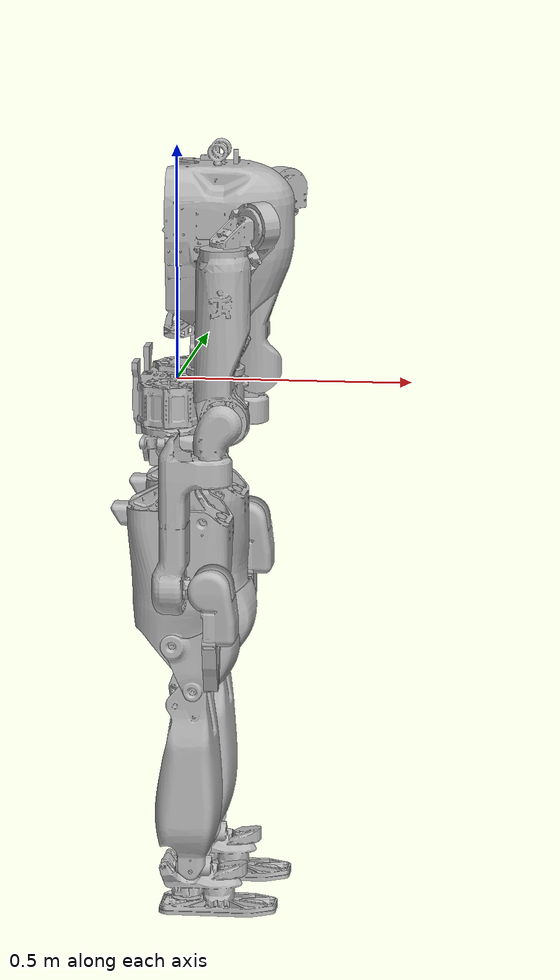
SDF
<sdf version='1.4'>
  <model name='nadia'>
    <link name='PELVIS_LINK'>
      <pose>0 0 0 0 -0 0</pose>
      <inertial>
        <pose>0.0207309 2.023e-05 -0.0309812 0 -0 0</pose>
        <mass>19.0917</mass>
        <inertia>
          <ixx>0.0942</ixx>
          <ixy>6.05e-06</ixy>
          <ixz>0.000379</ixz>
          <iyy>0.0416</iyy>
          <iyz>3.37e-07</iyz>
          <izz>0.112</izz>
        </inertia>
      </inertial>
	  <sensor name="pelvis_orientus_imu" type="imu">
      <pose>-0.00960080 -0.0000010 -0.07599977 0 0 3.141592</pose>
      <always_on>1</always_on>
        <imu>
          <noise>
            <type>gaussian</type>
            <rate>
              <mean>0</mean>
              <stddev>0.0002</stddev>
              <bias_mean>7.5e-06</bias_mean>
              <bias_stddev>8e-07</bias_stddev>
            </rate>
            <accel>
              <mean>0</mean>
              <stddev>0.017</stddev>
              <bias_mean>0.1</bias_mean>
              <bias_stddev>0.001</bias_stddev>
            </accel>
          </noise>
        </imu>
      <visualize>1</visualize>
      <topic>imu_sensor</topic>
    </sensor>

    <sensor name="pelvis_gable_imu" type="imu">
      <pose>0.04096090  -0.17557654 -0.00812384 1.5708 3.141592 0.3926991</pose>
      <always_on>1</always_on>
        <imu>
          <noise>
            <type>gaussian</type>
            <rate>
              <mean>0</mean>
              <stddev>0.0002</stddev>
              <bias_mean>7.5e-06</bias_mean>
              <bias_stddev>8e-07</bias_stddev>
            </rate>
            <accel>
              <mean>0</mean>
              <stddev>0.017</stddev>
              <bias_mean>0.1</bias_mean>
              <bias_stddev>0.001</bias_stddev>
            </accel>
          </noise>
        </imu>
      <visualize>1</visualize>
      <topic>imu_sensor</topic>
    </sensor>

      <sensor name="pelvis_stim_imu" type="imu">
      <pose>-0.03133646 0.02237500 -0.07000000 0.0 3.141592 0.0</pose>
      <always_on>1</always_on>
        <imu>
          <noise>
            <type>gaussian</type>
            <rate>
              <mean>0</mean>
              <stddev>0.0002</stddev>
              <bias_mean>7.5e-06</bias_mean>
              <bias_stddev>8e-07</bias_stddev>
            </rate>
            <accel>
              <mean>0</mean>
              <stddev>0.017</stddev>
              <bias_mean>0.1</bias_mean>
              <bias_stddev>0.001</bias_stddev>
            </accel>
          </noise>
        </imu>
      <visualize>1</visualize>
      <topic>imu_sensor</topic>
    </sensor>

      <visual name='PELVIS_LINK_visual'>
        <pose>0 0 0 0 -0 0</pose>
        <geometry>
          <mesh>
            <scale>1 1 1</scale>
            <uri>model://nadia_V16_description/meshes/pelvis.obj</uri>
          </mesh>
        </geometry>
      </visual>
      <velocity_decay>
        <linear>0</linear>
        <angular>0</angular>
      </velocity_decay>
    </link>
    <link name='LEFT_HIP_YAW_LINK'>
      <pose>0 0.115 -0.07185 0 -0 0</pose>
      <inertial>
        <pose>-0.00629727 0.00606893 -0.0397184 0 -0 0</pose>
        <mass>1.814</mass>
        <inertia>
          <ixx>0.00474191</ixx>
          <ixy>0.000527</ixy>
          <ixz>-0.000307</ixz>
          <iyy>0.00414</iyy>
          <iyz>1.36e-05</iyz>
          <izz>0.00569</izz>
        </inertia>
      </inertial>
      <visual name='LEFT_HIP_YAW_LINK_visual'>
        <pose>0 0 0 0 -0 0</pose>
        <geometry>
          <mesh>
            <scale>1 1 1</scale>
            <uri>model://nadia_V16_description/meshes/left_hip_yaw.obj</uri>
          </mesh>
        </geometry>
      </visual>
      <velocity_decay>
        <linear>0</linear>
        <angular>0</angular>
      </velocity_decay>
    </link>
    <joint name='LEFT_HIP_Z' type='revolute'>
      <child>LEFT_HIP_YAW_LINK</child>
      <parent>PELVIS_LINK</parent>
      <axis>
        <xyz>0 0 -1</xyz>
        <limit>
          <lower>-0.7854</lower>
          <upper>0.7854</upper>
          <effort>1000</effort>
          <velocity>100</velocity>
        </limit>
        <dynamics>
          <damping>0.05</damping>
        </dynamics>
      </axis>
    </joint>
    <link name='LEFT_HIP_ROLL_LINK'>
      <pose>0.035 0.13 -0.1216 0 -0 0</pose>
      <inertial>
        <pose>-0.0132704 0.00316985 -0.054 0 -0 0</pose>
        <mass>0.762</mass>
        <inertia>
          <ixx>0.00102899</ixx>
          <ixy>-9.31e-06</ixy>
          <ixz>0.000352</ixz>
          <iyy>0.00138</iyy>
          <iyz>3.22e-05</iyz>
          <izz>0.000663</izz>
        </inertia>
      </inertial>
      <visual name='LEFT_HIP_ROLL_LINK_visual'>
        <pose>0 0 0 0 -0 0</pose>
        <geometry>
          <mesh>
            <scale>1 1 1</scale>
            <uri>model://nadia_V16_description/meshes/left_hip_roll.obj</uri>
          </mesh>
        </geometry>
      </visual>
      <velocity_decay>
        <linear>0</linear>
        <angular>0</angular>
      </velocity_decay>
    </link>
    <joint name='LEFT_HIP_X' type='revolute'>
      <child>LEFT_HIP_ROLL_LINK</child>
      <parent>LEFT_HIP_YAW_LINK</parent>
      <axis>
        <xyz>1 0 0</xyz>
        <limit>
          <lower>-0.5236</lower>
          <upper>1.0472</upper>
          <effort>1000</effort>
          <velocity>100</velocity>
        </limit>
        <dynamics>
          <damping>0.05</damping>
        </dynamics>
      </axis>
    </joint>
    <link name='LEFT_THIGH_LINK'>
      <pose>0.035 0.13 -0.200668 0 -0 0</pose>
      <inertial>
        <pose>-0.00093749 0.0113451 -0.178631 0 -0 0</pose>
        <mass>10.953</mass>
        <inertia>
          <ixx>0.162227</ixx>
          <ixy>-0.000749</ixy>
          <ixz>0.0156</ixz>
          <iyy>0.174</iyy>
          <iyz>0.00213</iyz>
          <izz>0.0528</izz>
        </inertia>
      </inertial>
      <sensor name="left_thigh_imu" type="imu">
      <pose>0.05793744 0.01666131 -0.09511697 2.025  0.000 -1.571</pose>
      <always_on>1</always_on>
        <imu>
          <noise>
            <type>gaussian</type>
            <rate>
              <mean>0</mean>
              <stddev>0.0002</stddev>
              <bias_mean>7.5e-06</bias_mean>
              <bias_stddev>8e-07</bias_stddev>
            </rate>
            <accel>
              <mean>0</mean>
              <stddev>0.017</stddev>
              <bias_mean>0.1</bias_mean>
              <bias_stddev>0.001</bias_stddev>
            </accel>
          </noise>
        </imu>
      <visualize>1</visualize>
    </sensor>
      <visual name='LEFT_THIGH_LINK_visual'>
        <pose>0 0 0 0 -0 0</pose>
        <geometry>
          <mesh>
            <scale>1 1 1</scale>
            <uri>model://nadia_V16_description/meshes/left_thigh.obj</uri>
          </mesh>
        </geometry>
      </visual>
      <velocity_decay>
        <linear>0</linear>
        <angular>0</angular>
      </velocity_decay>
    </link>
    <joint name='LEFT_HIP_Y' type='revolute'>
      <child>LEFT_THIGH_LINK</child>
      <parent>LEFT_HIP_ROLL_LINK</parent>
      <axis>
        <xyz>0 1 0</xyz>
        <limit>
          <lower>-1.57</lower>
          <upper>0.314</upper>
          <effort>1000</effort>
          <velocity>100</velocity>
        </limit>
        <dynamics>
          <damping>0.05</damping>
        </dynamics>
      </axis>
    </joint>
    <link name='LEFT_KNEE_LINKAGE_LINK'>
      <pose>0.035 0.13 -0.580668 0 -0 0</pose>
      <inertial>
        <pose>0.00901763 0.00753613 -0.0436823 0 -0 0</pose>
        <mass>0.936</mass>
        <inertia>
          <ixx>0.00261734</ixx>
          <ixy>3.06e-07</ixy>
          <ixz>0.000313</ixz>
          <iyy>0.00159</iyy>
          <iyz>1.51e-06</iyz>
          <izz>0.00128</izz>
        </inertia>
      </inertial>
      <visual name='LEFT_KNEE_LINKAGE_LINK_visual'>
        <pose>0 0 0 0 -0 0</pose>
        <geometry>
          <mesh>
            <scale>1 1 1</scale>
            <uri>model://nadia_V16_description/meshes/left_knee_linkage.obj</uri>
          </mesh>
        </geometry>
      </visual>
      <velocity_decay>
        <linear>0</linear>
        <angular>0</angular>
      </velocity_decay>
    </link>
    <joint name='LEFT_KNEE_LINKAGE_UPPER_Y' type='revolute'>
      <child>LEFT_KNEE_LINKAGE_LINK</child>
      <parent>LEFT_THIGH_LINK</parent>
      <axis>
        <xyz>0 1 0</xyz>
        <limit>
          <lower>0</lower>
          <upper>2.6</upper>
          <effort>20</effort>
          <velocity>150</velocity>
        </limit>
        <dynamics>
          <damping>0.05</damping>
        </dynamics>
      </axis>
    </joint>
    <link name='LEFT_KNEE_SHELL_LINK'>
      <pose>0.0138691 0.13 -0.535353 0 -0 0</pose>
      <inertial>
        <pose>0.0248995 0.00826196 -0.0533022 0 -0 0</pose>
        <mass>1.101</mass>
        <inertia>
          <ixx>0.00642</ixx>
          <ixy>-3.64e-05</ixy>
          <ixz>1.43e-05</ixz>
          <iyy>0.00456</iyy>
          <iyz>-6.54e-05</iyz>
          <izz>0.00566</izz>
        </inertia>
      </inertial>
      <visual name='LEFT_KNEE_SHELL_LINK_visual'>
        <pose>0 0 0 0 -0 0</pose>
        <geometry>
          <mesh>
            <scale>1 1 1</scale>
            <uri>model://nadia_V16_description/meshes/left_knee_shell.obj</uri>
          </mesh>
        </geometry>
      </visual>
      <velocity_decay>
        <linear>0</linear>
        <angular>0</angular>
      </velocity_decay>
    </link>
    <joint name='LEFT_KNEE_SHELL_UPPER_Y' type='revolute'>
      <child>LEFT_KNEE_SHELL_LINK</child>
      <parent>LEFT_THIGH_LINK</parent>
      <axis>
        <xyz>0 1 0</xyz>
        <limit>
          <lower>0</lower>
          <upper>2.62</upper>
          <effort>1000</effort>
          <velocity>100</velocity>
        </limit>
        <dynamics>
          <damping>0.05</damping>
        </dynamics>
      </axis>
    </joint>
    <link name='LEFT_SHIN_LINK'>
      <pose>0.0561879 0.13 -0.636886 0 -0 0</pose>
      <inertial>
        <pose>-0.0184149 0.00228086 -0.220542 0 -0 0</pose>
        <mass>5.42</mass>
        <inertia>
          <ixx>0.0644378</ixx>
          <ixy>-0.000214</ixy>
          <ixz>-0.00538</ixz>
          <iyy>0.0583</iyy>
          <iyz>-0.000962</iyz>
          <izz>0.0136</izz>
        </inertia>
      </inertial>
      <sensor name="left_shin_imu" type="imu">
      <pose>-0.03216129 -0.07159184 -0.1864738 -1.570796 0.0 0.0</pose>
      <always_on>1</always_on>
        <imu>
          <noise>
            <type>gaussian</type>
            <rate>
              <mean>0</mean>
              <stddev>0.0002</stddev>
              <bias_mean>7.5e-06</bias_mean>
              <bias_stddev>8e-07</bias_stddev>
            </rate>
            <accel>
              <mean>0</mean>
              <stddev>0.017</stddev>
              <bias_mean>0.1</bias_mean>
              <bias_stddev>0.001</bias_stddev>
            </accel>
          </noise>
        </imu>
      <visualize>1</visualize>
    </sensor>
      <visual name='LEFT_SHIN_LINK_visual'>
        <pose>0 0 0 0 -0 0</pose>
        <geometry>
          <mesh>
            <scale>1 1 1</scale>
            <uri>model://nadia_V16_description/meshes/left_shin.obj</uri>
          </mesh>
        </geometry>
      </visual>
      <velocity_decay>
        <linear>0</linear>
        <angular>0</angular>
      </velocity_decay>
    </link>
    <joint name='LEFT_KNEE_SHELL_LOWER_Y' type='revolute'>
      <child>LEFT_SHIN_LINK</child>
      <parent>LEFT_KNEE_SHELL_LINK</parent>
      <axis>
        <xyz>0 1 0</xyz>
        <limit>
          <lower>0</lower>
          <upper>2.62</upper>
          <effort>1000</effort>
          <velocity>100</velocity>
        </limit>
        <dynamics>
          <damping>0.05</damping>
        </dynamics>
      </axis>
    </joint>
    <link name='LEFT_ANKLE_LINK'>
      <pose>0.0478857 0.13 -1.03903 0 -0 0</pose>
      <inertial>
        <pose>-0.00072338 -6.619e-05 -0.00399965 0 -0 0</pose>
        <mass>0.56</mass>
        <inertia>
          <ixx>0.000459</ixx>
          <ixy>2.65e-08</ixy>
          <ixz>-2.43e-06</ixz>
          <iyy>0.000336</iyy>
          <iyz>1.48e-07</iyz>
          <izz>0.000645</izz>
        </inertia>
      </inertial>
      <visual name='LEFT_ANKLE_LINK_visual'>
        <pose>0 0 0 0 -0 0</pose>
        <geometry>
          <mesh>
            <scale>1 1 1</scale>
            <uri>model://nadia_V16_description/meshes/ankle.obj</uri>
          </mesh>
        </geometry>
      </visual>
      <velocity_decay>
        <linear>0</linear>
        <angular>0</angular>
      </velocity_decay>
    </link>
    <joint name='LEFT_ANKLE_Y' type='revolute'>
      <child>LEFT_ANKLE_LINK</child>
      <parent>LEFT_SHIN_LINK</parent>
      <axis>
        <xyz>0 1 0</xyz>
        <limit>
          <lower>-1.0472</lower>
          <upper>0.698132</upper>
          <effort>1000</effort>
          <velocity>100</velocity>
        </limit>
        <dynamics>
          <damping>0.05</damping>
        </dynamics>
      </axis>
    </joint>
    <link name='LEFT_FOOT_LINK'>
      <pose>0.0478857 0.13 -1.04903 0 -0 0</pose>
      <inertial>
        <pose>0.03075449 0.00007807 -0.04382467 0 -0 0</pose>
        <mass>1.75</mass>
        <inertia>
          <ixx>0.00345011</ixx>
          <ixy>-0.0000073</ixy>
          <ixz>0.0014225</ixz>
          <iyy>0.00955764</iyy>
          <iyz>-2.269e-7</iyz>
          <izz>0.00881313</izz>
        </inertia>
      </inertial>
      <visual name='LEFT_FOOT_LINK_visual'>
        <pose>0 0 0 0 -0 0</pose>
        <geometry>
          <mesh>
            <scale>1 1 1</scale>
            <uri>model://nadia_V16_description/meshes/foot.obj</uri>
          </mesh>
        </geometry>
      </visual>
      <velocity_decay>
        <linear>0</linear>
        <angular>0</angular>
      </velocity_decay>
      <sensor name="left_foot_imu" type="imu">
      <pose>0.053 0.0 -0.063 0.0 0.0 1.57079</pose>
      <always_on>1</always_on>
        <imu>
          <noise>
            <type>gaussian</type>
            <rate>
              <mean>0</mean>
              <stddev>0.0002</stddev>
              <bias_mean>7.5e-06</bias_mean>
              <bias_stddev>8e-07</bias_stddev>
            </rate>
            <accel>
              <mean>0</mean>
              <stddev>0.017</stddev>
              <bias_mean>0.1</bias_mean>
              <bias_stddev>0.001</bias_stddev>
            </accel>
          </noise>
        </imu>
      <visualize>1</visualize>
      </sensor>
    </link>
    <joint name='LEFT_ANKLE_X' type='revolute'>
      <child>LEFT_FOOT_LINK</child>
      <parent>LEFT_ANKLE_LINK</parent>
      <axis>
        <xyz>1 0 0</xyz>
        <limit>
          <lower>-0.436332</lower>
          <upper>0.436332</upper>
          <effort>1000</effort>
          <velocity>100</velocity>
        </limit>
        <dynamics>
          <damping>0.05</damping>
        </dynamics>
      </axis>
    </joint>
    <link name='RIGHT_HIP_YAW_LINK'>
      <pose>0 -0.115 -0.07185 0 -0 0</pose>
      <inertial>
        <pose>-0.00629727 -0.00606893 -0.0397184 0 -0 0</pose>
        <mass>1.814</mass>
        <inertia>
          <ixx>0.00474191</ixx>
          <ixy>-0.000527</ixy>
          <ixz>-0.000307</ixz>
          <iyy>0.00414</iyy>
          <iyz>-1.36e-05</iyz>
          <izz>0.00569</izz>
        </inertia>
      </inertial>
      <visual name='RIGHT_HIP_YAW_LINK_visual'>
        <pose>0 0 0 0 -0 0</pose>
        <geometry>
          <mesh>
            <scale>1 1 1</scale>
            <uri>model://nadia_V16_description/meshes/right_hip_yaw.obj</uri>
          </mesh>
        </geometry>
      </visual>
      <velocity_decay>
        <linear>0</linear>
        <angular>0</angular>
      </velocity_decay>
    </link>
    <joint name='RIGHT_HIP_Z' type='revolute'>
      <child>RIGHT_HIP_YAW_LINK</child>
      <parent>PELVIS_LINK</parent>
      <axis>
        <xyz>0 0 -1</xyz>
        <limit>
          <lower>-0.7854</lower>
          <upper>0.7854</upper>
          <effort>1000</effort>
          <velocity>100</velocity>
        </limit>
        <dynamics>
          <damping>0.05</damping>
        </dynamics>
      </axis>
    </joint>
    <link name='RIGHT_HIP_ROLL_LINK'>
      <pose>0.035 -0.13 -0.1216 0 -0 0</pose>
      <inertial>
        <pose>-0.0132704 -0.00316985 -0.054 0 -0 0</pose>
        <mass>0.762</mass>
        <inertia>
          <ixx>0.00102899</ixx>
          <ixy>9.31e-06</ixy>
          <ixz>0.000352</ixz>
          <iyy>0.00138</iyy>
          <iyz>-3.22e-05</iyz>
          <izz>0.000663</izz>
        </inertia>
      </inertial>
      <visual name='RIGHT_HIP_ROLL_LINK_visual'>
        <pose>0 0 0 0 -0 0</pose>
        <geometry>
          <mesh>
            <scale>1 1 1</scale>
            <uri>model://nadia_V16_description/meshes/right_hip_roll.obj</uri>
          </mesh>
        </geometry>
      </visual>
      <velocity_decay>
        <linear>0</linear>
        <angular>0</angular>
      </velocity_decay>
    </link>
    <joint name='RIGHT_HIP_X' type='revolute'>
      <child>RIGHT_HIP_ROLL_LINK</child>
      <parent>RIGHT_HIP_YAW_LINK</parent>
      <axis>
        <xyz>1 0 0</xyz>
        <limit>
          <lower>-1.0472</lower>
          <upper>0.5236</upper>
          <effort>1000</effort>
          <velocity>100</velocity>
        </limit>
        <dynamics>
          <damping>0.05</damping>
        </dynamics>
      </axis>
    </joint>
    <link name='RIGHT_THIGH_LINK'>
      <pose>0.035 -0.13 -0.200668 0 -0 0</pose>
      <inertial>
        <pose>-0.00093749 -0.0113451 -0.178631 0 -0 0</pose>
        <mass>10.953</mass>
        <inertia>
          <ixx>0.162227</ixx>
          <ixy>0.000749</ixy>
          <ixz>0.0156</ixz>
          <iyy>0.174</iyy>
          <iyz>-0.00213</iyz>
          <izz>0.0528</izz>
        </inertia>
      </inertial>
      <sensor name="right_thigh_imu" type="imu">
      <pose>0.05793670 0.01066129 -0.09511742 2.025  0.000 -1.571</pose>
      <always_on>1</always_on>
        <imu>
          <noise>
            <type>gaussian</type>
            <rate>
              <mean>0</mean>
              <stddev>0.0002</stddev>
              <bias_mean>7.5e-06</bias_mean>
              <bias_stddev>8e-07</bias_stddev>
            </rate>
            <accel>
              <mean>0</mean>
              <stddev>0.017</stddev>
              <bias_mean>0.1</bias_mean>
              <bias_stddev>0.001</bias_stddev>
            </accel>
          </noise>
        </imu>
      <visualize>1</visualize>
    </sensor>
      <visual name='RIGHT_THIGH_LINK_visual'>
        <pose>0 0 0 0 -0 0</pose>
        <geometry>
          <mesh>
            <scale>1 1 1</scale>
            <uri>model://nadia_V16_description/meshes/right_thigh.obj</uri>
          </mesh>
        </geometry>
      </visual>
      <velocity_decay>
        <linear>0</linear>
        <angular>0</angular>
      </velocity_decay>
    </link>
    <joint name='RIGHT_HIP_Y' type='revolute'>
      <child>RIGHT_THIGH_LINK</child>
      <parent>RIGHT_HIP_ROLL_LINK</parent>
      <axis>
        <xyz>0 1 0</xyz>
        <limit>
          <lower>-1.57</lower>
          <upper>0.314</upper>
          <effort>1000</effort>
          <velocity>100</velocity>
        </limit>
        <dynamics>
          <damping>0.05</damping>
        </dynamics>
      </axis>
    </joint>
    <link name='RIGHT_KNEE_LINKAGE_LINK'>
      <pose>0.035 -0.13 -0.580668 0 -0 0</pose>
      <inertial>
        <pose>0.00901763 -0.00753613 -0.0436823 0 -0 0</pose>
        <mass>0.936</mass>
        <inertia>
          <ixx>0.00261734</ixx>
          <ixy>-3.06e-07</ixy>
          <ixz>0.000313</ixz>
          <iyy>0.00159</iyy>
          <iyz>-1.51e-06</iyz>
          <izz>0.00128</izz>
        </inertia>
      </inertial>
      <visual name='RIGHT_KNEE_LINKAGE_LINK_visual'>
        <pose>0 0 0 0 -0 0</pose>
        <geometry>
          <mesh>
            <scale>1 1 1</scale>
            <uri>model://nadia_V16_description/meshes/right_knee_linkage.obj</uri>
          </mesh>
        </geometry>
      </visual>
      <velocity_decay>
        <linear>0</linear>
        <angular>0</angular>
      </velocity_decay>
    </link>
    <joint name='RIGHT_KNEE_LINKAGE_UPPER_Y' type='revolute'>
      <child>RIGHT_KNEE_LINKAGE_LINK</child>
      <parent>RIGHT_THIGH_LINK</parent>
      <axis>
        <xyz>0 1 0</xyz>
        <limit>
          <lower>0</lower>
          <upper>2.62</upper>
          <effort>1000</effort>
          <velocity>100</velocity>
        </limit>
        <dynamics>
          <damping>0.05</damping>
        </dynamics>
      </axis>
    </joint>
    <link name='RIGHT_KNEE_SHELL_LINK'>
      <pose>0.0138691 -0.13 -0.535353 0 -0 0</pose>
      <inertial>
        <pose>0.0248995 -0.00826196 -0.0533022 0 -0 0</pose>
        <mass>1.101</mass>
        <inertia>
          <ixx>0.00642</ixx>
          <ixy>3.64e-05</ixy>
          <ixz>1.43e-05</ixz>
          <iyy>0.00456</iyy>
          <iyz>6.54e-05</iyz>
          <izz>0.00566</izz>
        </inertia>
      </inertial>
      <visual name='RIGHT_KNEE_SHELL_LINK_visual'>
        <pose>0 0 0 0 -0 0</pose>
        <geometry>
          <mesh>
            <scale>1 1 1</scale>
            <uri>model://nadia_V16_description/meshes/right_knee_shell.obj</uri>
          </mesh>
        </geometry>
      </visual>
      <velocity_decay>
        <linear>0</linear>
        <angular>0</angular>
      </velocity_decay>
    </link>
    <joint name='RIGHT_KNEE_SHELL_UPPER_Y' type='revolute'>
      <child>RIGHT_KNEE_SHELL_LINK</child>
      <parent>RIGHT_THIGH_LINK</parent>
      <axis>
        <xyz>0 1 0</xyz>
        <limit>
          <lower>0</lower>
          <upper>2.62</upper>
          <effort>1000</effort>
          <velocity>100</velocity>
        </limit>
        <dynamics>
          <damping>0.05</damping>
        </dynamics>
      </axis>
    </joint>
    <link name='RIGHT_SHIN_LINK'>
      <pose>0.0561879 -0.13 -0.636886 0 -0 0</pose>
      <inertial>
        <pose>-0.0183705 -0.00241134 -0.219913 0 -0 0</pose>
        <mass>5.42</mass>
        <inertia>
          <ixx>0.0644431</ixx>
          <ixy>0.000202</ixy>
          <ixz>-0.00539</ixz>
          <iyy>0.0583</iyy>
          <iyz>0.000906</iyz>
          <izz>0.0136</izz>
        </inertia>
      </inertial>
      <sensor name="right_shin_imu" type="imu">
      <pose>-0.002838710 0.07159142 -0.1864738 -1.570796 0.0 3.141592</pose>
      <always_on>1</always_on>
        <imu>
          <noise>
            <type>gaussian</type>
            <rate>
              <mean>0</mean>
              <stddev>0.0002</stddev>
              <bias_mean>7.5e-06</bias_mean>
              <bias_stddev>8e-07</bias_stddev>
            </rate>
            <accel>
              <mean>0</mean>
              <stddev>0.017</stddev>
              <bias_mean>0.1</bias_mean>
              <bias_stddev>0.001</bias_stddev>
            </accel>
          </noise>
        </imu>
      <visualize>1</visualize>
    </sensor>
      <visual name='RIGHT_SHIN_LINK_visual'>
        <pose>0 0 0 0 -0 0</pose>
        <geometry>
          <mesh>
            <scale>1 1 1</scale>
            <uri>model://nadia_V16_description/meshes/right_shin.obj</uri>
          </mesh>
        </geometry>
      </visual>
      <velocity_decay>
        <linear>0</linear>
        <angular>0</angular>
      </velocity_decay>
    </link>
    <joint name='RIGHT_KNEE_SHELL_LOWER_Y' type='revolute'>
      <child>RIGHT_SHIN_LINK</child>
      <parent>RIGHT_KNEE_SHELL_LINK</parent>
      <axis>
        <xyz>0 1 0</xyz>
        <limit>
          <lower>0</lower>
          <upper>2.62</upper>
          <effort>1000</effort>
          <velocity>100</velocity>
        </limit>
        <dynamics>
          <damping>0.05</damping>
        </dynamics>
      </axis>
    </joint>
    <link name='RIGHT_ANKLE_LINK'>
      <pose>0.0478857 -0.13 -1.03903 0 -0 0</pose>
      <inertial>
        <pose>-0.00072338 6.619e-05 -0.00399965 0 -0 0</pose>
        <mass>0.56</mass>
        <inertia>
          <ixx>0.000459</ixx>
          <ixy>-2.65e-08</ixy>
          <ixz>-2.43e-06</ixz>
          <iyy>0.000336</iyy>
          <iyz>-1.48e-07</iyz>
          <izz>0.000645</izz>
        </inertia>
      </inertial>
      <visual name='RIGHT_ANKLE_LINK_visual'>
        <pose>0 0 0 0 -0 0</pose>
        <geometry>
          <mesh>
            <scale>1 1 1</scale>
            <uri>model://nadia_V16_description/meshes/ankle.obj</uri>
          </mesh>
        </geometry>
      </visual>
      <velocity_decay>
        <linear>0</linear>
        <angular>0</angular>
      </velocity_decay>
    </link>
    <joint name='RIGHT_ANKLE_Y' type='revolute'>
      <child>RIGHT_ANKLE_LINK</child>
      <parent>RIGHT_SHIN_LINK</parent>
      <axis>
        <xyz>0 1 0</xyz>
        <limit>
          <lower>-1.0472</lower>
          <upper>0.698132</upper>
          <effort>1000</effort>
          <velocity>100</velocity>
        </limit>
        <dynamics>
          <damping>0.05</damping>
        </dynamics>
      </axis>
    </joint>
    <link name='RIGHT_FOOT_LINK'>
      <pose>0.0478857 -0.13 -1.04903 0 -0 0</pose>
      <inertial>
        <pose>0.032048 4e-06 -0.028422 0 -0 0</pose>
        <mass>1.75</mass>
        <inertia>
          <ixx>0.00261</ixx>
          <ixy>-3.59e-07</ixy>
          <ixz>0.00102</ixz>
          <iyy>0.011</iyy>
          <iyz>-2.99e-07</iyz>
          <izz>0.0121</izz>
        </inertia>
      </inertial>
      <visual name='RIGHT_FOOT_LINK_visual'>
        <pose>0 0 0 0 -0 0</pose>
        <geometry>
          <mesh>
            <scale>1 1 1</scale>
            <uri>model://nadia_V16_description/meshes/foot.obj</uri>
          </mesh>
        </geometry>
      </visual>
      <velocity_decay>
        <linear>0</linear>
        <angular>0</angular>
      </velocity_decay>
      <sensor name="right_foot_imu" type="imu">
      <pose>0.053 0.0 -0.063 0.0 0.0 1.57079</pose>
      <always_on>1</always_on>
        <imu>
          <noise>
            <type>gaussian</type>
            <rate>
              <mean>0</mean>
              <stddev>0.0002</stddev>
              <bias_mean>7.5e-06</bias_mean>
              <bias_stddev>8e-07</bias_stddev>
            </rate>
            <accel>
              <mean>0</mean>
              <stddev>0.017</stddev>
              <bias_mean>0.1</bias_mean>
              <bias_stddev>0.001</bias_stddev>
            </accel>
          </noise>
        </imu>
      <visualize>1</visualize>
      </sensor>
    </link>
    <joint name='RIGHT_ANKLE_X' type='revolute'>
      <child>RIGHT_FOOT_LINK</child>
      <parent>RIGHT_ANKLE_LINK</parent>
      <axis>
        <xyz>1 0 0</xyz>
        <limit>
          <lower>-0.436332</lower>
          <upper>0.436332</upper>
          <effort>1000</effort>
          <velocity>100</velocity>
        </limit>
        <dynamics>
          <damping>0.05</damping>
        </dynamics>
      </axis>
    </joint>
    <link name='SPINE_YAW_LINK'>
      <pose>0.08 0 0.00635 0 -0 0</pose>
      <inertial>
        <pose>-0.00853118 -2.697e-05 0.0379145 0 -0 0</pose>
        <mass>0.91</mass>
        <inertia>
          <ixx>0.00374289</ixx>
          <ixy>1.25498e-07</ixy>
          <ixz>0.000271325</ixz>
          <iyy>0.00403003</iyy>
          <iyz>-1.38016e-07</iyz>
          <izz>0.00621298</izz>
        </inertia>
      </inertial>
      <visual name='SPINE_YAW_LINK_visual'>
        <pose>0 0 0 0 -0 0</pose>
        <geometry>
          <mesh>
            <scale>1 1 1</scale>
            <uri>model://nadia_V16_description/meshes/spine_yaw.obj</uri>
          </mesh>
        </geometry>
      </visual>
      <velocity_decay>
        <linear>0</linear>
        <angular>0</angular>
      </velocity_decay>
    </link>
    <joint name='SPINE_Z' type='revolute'>
      <child>SPINE_YAW_LINK</child>
      <parent>PELVIS_LINK</parent>
      <axis>
        <xyz>0 0 1</xyz>
        <limit>
          <lower>-1.0472</lower>
          <upper>1.0472</upper>
          <effort>1000</effort>
          <velocity>100</velocity>
        </limit>
        <dynamics>
          <damping>0.05</damping>
        </dynamics>
      </axis>
    </joint>
    <link name='SPINE_ROLL_LINK'>
      <pose>0.08 0 0.0884 0 -0 0</pose>
      <inertial>
        <pose>-0.0190498 7e-08 0.0197924 0 -0 0</pose>
        <mass>0.44</mass>
        <inertia>
          <ixx>0.000373262</ixx>
          <ixy>-1.51442e-10</ixy>
          <ixz>-6.69067e-05</ixz>
          <iyy>0.000649978</iyy>
          <iyz>-1.27858e-10</iyz>
          <izz>0.000419409</izz>
        </inertia>
      </inertial>
      <visual name='SPINE_ROLL_LINK_visual'>
        <pose>0 0 0 0 -0 0</pose>
        <geometry>
          <mesh>
            <scale>1 1 1</scale>
            <uri>model://nadia_V16_description/meshes/spine_roll.obj</uri>
          </mesh>
        </geometry>
      </visual>
      <velocity_decay>
        <linear>0</linear>
        <angular>0</angular>
      </velocity_decay>
    </link>
    <joint name='SPINE_X' type='revolute'>
      <child>SPINE_ROLL_LINK</child>
      <parent>SPINE_YAW_LINK</parent>
      <axis>
        <xyz>1 0 0</xyz>
        <limit>
          <lower>-0.523599</lower>
          <upper>0.523599</upper>
          <effort>1000</effort>
          <velocity>100</velocity>
        </limit>
        <dynamics>
          <damping>0.05</damping>
        </dynamics>
      </axis>
    </joint>
    <link name='TORSO_LINK'>
      <pose>0.08 0 0.0984 0 -0 0</pose>
      <inertial>
        <pose>-0.0361387 -2.81e-06 0.259086 0 -0 0</pose>
        <mass>15.5</mass>
        <inertia>
          <ixx>0.534505</ixx>
          <ixy>8.4152e-05</ixy>
          <ixz>-0.00672956</ixz>
          <iyy>0.50541</iyy>
          <iyz>0.000207997</iyz>
          <izz>0.379402</izz>
        </inertia>
      </inertial>
      <visual name='TORSO_LINK_visual'>
        <pose>0 0 0 0 -0 0</pose>
        <geometry>
          <mesh>
            <scale>1 1 1</scale>
            <uri>model://nadia_V16_description/meshes/torso.obj</uri>
          </mesh>
        </geometry>
      </visual>
      <velocity_decay>
        <linear>0</linear>
        <angular>0</angular>
      </velocity_decay>
      <sensor name="torso_imu" type="imu">
      <pose>0.04529 -0.02427 0.33757 3.141592 0 0</pose>
      <always_on>1</always_on>
        <imu>
          <noise>
            <type>gaussian</type>
            <rate>
              <mean>0</mean>
              <stddev>0.0002</stddev>
              <bias_mean>7.5e-06</bias_mean>
              <bias_stddev>8e-07</bias_stddev>
            </rate>
            <accel>
              <mean>0</mean>
              <stddev>0.017</stddev>
              <bias_mean>0.1</bias_mean>
              <bias_stddev>0.001</bias_stddev>
            </accel>
          </noise>
        </imu>
      <visualize>1</visualize>
      <topic>imu_sensor</topic>
    </sensor>
    </link>
    <joint name='SPINE_Y' type='revolute'>
      <child>TORSO_LINK</child>
      <parent>SPINE_ROLL_LINK</parent>
      <axis>
        <xyz>0 1 0</xyz>
        <limit>
          <lower>-0.34</lower>
          <upper>0.98</upper>
          <effort>1000</effort>
          <velocity>100</velocity>
        </limit>
        <dynamics>
          <damping>0.05</damping>
        </dynamics>
      </axis>
    </joint>
    <link name='LEFT_SHOULDER_PITCH_LINK'>
      <pose frame=''>0.13 0.165 0.2714 0.785398 -0 -0.785398</pose>
      <inertial>
        <pose frame=''>-0.000615 0.086195 -0.000701 0 -0 0</pose>
        <mass>2.2923</mass>
        <inertia>
          <ixx>0.00783026</ixx>
          <ixy>9.59603e-05</ixy>
          <ixz>2.30198e-05</ixz>
          <iyy>0.00238384</iyy>
          <iyz>4.66457e-05</iyz>
          <izz>0.00761744</izz>
        </inertia>
      </inertial>
      <visual name='LEFT_SHOULDER_PITCH_LINK_visual'>
        <pose frame=''>0 0 0 0 -0 0</pose>
        <geometry>
          <mesh>
            <scale>1 1 1</scale>
            <uri>model://nadia_V16_description/meshes/left_shoulder_pitch.obj</uri>
          </mesh>
        </geometry>
      </visual>
      <sensor name="LEFT_SHOULDER_PITCH_LINK_imu_sensor" type="imu">
        <pose>-0.014642 0.070126 -0.021371 -1.5708 0.0 0.0</pose>
        <always_on>1</always_on>
        <imu>
          <noise>
            <type>gaussian</type>
            <rate>
              <mean>0</mean>
              <stddev>0.0002</stddev>
              <bias_mean>7.5e-06</bias_mean>
              <bias_stddev>8e-07</bias_stddev>
            </rate>
            <accel>
              <mean>0</mean>
              <stddev>0.017</stddev>
              <bias_mean>0.1</bias_mean>
              <bias_stddev>0.001</bias_stddev>
            </accel>
          </noise>
        </imu>
        <visualize>1</visualize>
        <topic>imu_sensor</topic>
      </sensor>
    </link>
    <joint name='LEFT_SHOULDER_Y' type='revolute'>
      <child>LEFT_SHOULDER_PITCH_LINK</child>
      <parent>TORSO_LINK</parent>
      <axis>
        <xyz>0.5 0.5 0.707107</xyz>
        <limit>
          <lower>-2.0944</lower>
          <upper>1.5708</upper>
          <effort>1000</effort>
          <velocity>100</velocity>
        </limit>
        <dynamics>
          <damping>0.05</damping>
          <friction>0</friction>
          <spring_reference>0</spring_reference>
          <spring_stiffness>0</spring_stiffness>
        </dynamics>
        <use_parent_model_frame>1</use_parent_model_frame>
      </axis>
    </joint>
    <link name='LEFT_SHOULDER_ROLL_LINK'>
      <pose frame=''>0.2 0.235 0.370395 -1e-06 6.1e-05 -0.785398</pose>
      <inertial>
        <pose frame=''>-0.058521 7e-06 -0.014753 0 -0 0</pose>
        <mass>0.4372</mass>
        <inertia>
          <ixx>0.000240825</ixx>
          <ixy>2.3426e-07</ixy>
          <ixz>-6.40547e-05</ixz>
          <iyy>0.000345394</iyy>
          <iyz>1.42336e-07</iyz>
          <izz>0.000354053</izz>
        </inertia>
      </inertial>
      <visual name='LEFT_SHOULDER_ROLL_LINK_visual'>
        <pose frame=''>0 0 0 0 -0 0</pose>
        <geometry>
          <mesh>
            <scale>1 1 1</scale>
            <uri>model://nadia_V16_description/meshes/left_shoulder_roll.obj</uri>
          </mesh>
        </geometry>
      </visual>
    </link>
    <joint name='LEFT_SHOULDER_X' type='revolute'>
      <child>LEFT_SHOULDER_ROLL_LINK</child>
      <parent>LEFT_SHOULDER_PITCH_LINK</parent>
      <axis>
        <xyz>0.707107 -0.707107 -6.1e-05</xyz>
        <limit>
          <lower>-0.261799</lower>
          <upper>1.5708</upper>
          <effort>1000</effort>
          <velocity>100</velocity>
        </limit>
        <dynamics>
          <damping>0.05</damping>
          <friction>0</friction>
          <spring_reference>0</spring_reference>
          <spring_stiffness>0</spring_stiffness>
        </dynamics>
        <use_parent_model_frame>1</use_parent_model_frame>
      </axis>
    </joint>
    <link name='LEFT_SHOULDER_YAW_LINK'>
      <pose frame=''>0.13636 0.29864 0.3704 4.3e-05 4.4e-05 0</pose>
      <inertial>
        <pose frame=''>-0.002065 -9.6e-05 -0.212279 0 -0 0</pose>
        <mass>1.8344</mass>
        <inertia>
          <ixx>0.043966</ixx>
          <ixy>2.67548e-05</ixy>
          <ixz>-0.00035456</ixz>
          <iyy>0.0443699</iyy>
          <iyz>-0.000572651</iyz>
          <izz>0.00219667</izz>
        </inertia>
      </inertial>
      <visual name='LEFT_SHOULDER_YAW_LINK_visual'>
        <pose frame=''>0 0 0 0 -0 0</pose>
        <geometry>
          <mesh>
            <scale>1 1 1</scale>
            <uri>model://nadia_V16_description/meshes/left_shoulder_yaw.obj</uri>
          </mesh>
        </geometry>
      </visual>
      <sensor name="LEFT_SHOULDER_YAW_LINK_imu_sensor" type="imu">
        <pose>0.024481 0.014661 -0.148274 -1.5708 0.0 -1.5708</pose>
        <always_on>1</always_on>
        <imu>
          <noise>
            <type>gaussian</type>
            <rate>
              <mean>0</mean>
              <stddev>0.0002</stddev>
              <bias_mean>7.5e-06</bias_mean>
              <bias_stddev>8e-07</bias_stddev>
            </rate>
            <accel>
              <mean>0</mean>
              <stddev>0.017</stddev>
              <bias_mean>0.1</bias_mean>
              <bias_stddev>0.001</bias_stddev>
            </accel>
          </noise>
        </imu>
        <visualize>1</visualize>
        <topic>imu_sensor</topic>
      </sensor>
    </link>
    <joint name='LEFT_SHOULDER_Z' type='revolute'>
      <child>LEFT_SHOULDER_YAW_LINK</child>
      <parent>LEFT_SHOULDER_ROLL_LINK</parent>
      <axis>
        <xyz>4.4e-05 -4.3e-05 1</xyz>
        <limit>
          <lower>-1.5708</lower>
          <upper>1.5708</upper>
          <effort>1000</effort>
          <velocity>100</velocity>
        </limit>
        <dynamics>
          <damping>0.05</damping>
          <friction>0</friction>
          <spring_reference>0</spring_reference>
          <spring_stiffness>0</spring_stiffness>
        </dynamics>
        <use_parent_model_frame>1</use_parent_model_frame>
      </axis>
    </joint>
    <link name='LEFT_ELBOW_PITCH_LINK'>
      <pose frame=''>0.136343 0.298657 -0.0296 4.3e-05 4.4e-05 0</pose>
      <inertial>
        <pose frame=''>-0.016864 0.0315 -0.030485 0 -0 0</pose>
        <mass>0.212707</mass>
        <inertia>
          <ixx>0.00022274</ixx>
          <ixy>1.07e-06</ixy>
          <ixz>-4.607e-05</ixz>
          <iyy>0.00027199</iyy>
          <iyz>-2.447e-07</iyz>
          <izz>0.00011761</izz>
        </inertia>
      </inertial>
      <visual name='LEFT_ELBOW_PITCH_LINK_visual'>
        <pose frame=''>0 0 0 0 -0 0</pose>
        <geometry>
          <mesh>
            <scale>1 1 1</scale>
            <uri>model://nadia_V16_description/meshes/left_elbow_pitch.obj</uri>
          </mesh>
        </geometry>
      </visual>
    </link>
    <joint name='LEFT_ELBOW_Y' type='revolute'>
      <child>LEFT_ELBOW_PITCH_LINK</child>
      <parent>LEFT_SHOULDER_YAW_LINK</parent>
      <axis>
        <xyz>0 1 4.3e-05</xyz>
        <limit>
          <lower>-2.79253</lower>
          <upper>0.1</upper>
          <effort>1000</effort>
          <velocity>100</velocity>
        </limit>
        <dynamics>
          <damping>0.05</damping>
          <friction>0</friction>
          <spring_reference>0</spring_reference>
          <spring_stiffness>0</spring_stiffness>
        </dynamics>
        <use_parent_model_frame>1</use_parent_model_frame>
      </axis>
    </joint>
    <link name='LEFT_WRIST_YAW_LINK'>
      <pose frame=''>0.111343 0.323657 -0.029597 4.3e-05 4.4e-05 0</pose>
      <inertial>
        <pose frame=''>-0.049396 -0.000405 -0.198748 0 -0 0</pose>
        <mass>1.435</mass>
        <inertia>
          <ixx>0.0200285</ixx>
          <ixy>-5.33061e-06</ixy>
          <ixz>-0.00394448</ixz>
          <iyy>0.0214876</iyy>
          <iyz>-5.43806e-05</iyz>
          <izz>0.00296242</izz>
        </inertia>
      </inertial>
      <visual name='LEFT_WRIST_YAW_LINK_visual'>
        <pose frame=''>0 0 0 0 -0 0</pose>
        <geometry>
          <mesh>
            <scale>1 1 1</scale>
            <uri>model://nadia_V16_description/meshes/left_wrist_yaw.obj</uri>
          </mesh>
        </geometry>
      </visual>
      <sensor name="LEFT_WRIST_YAW_LINK_imu_sensor" type="imu">
        <pose>0.012871 -0.014642 -0.117926 3.14159 0.0 1.5708</pose>
        <always_on>1</always_on>
        <imu>
          <noise>
            <type>gaussian</type>
            <rate>
              <mean>0</mean>
              <stddev>0.0002</stddev>
              <bias_mean>7.5e-06</bias_mean>
              <bias_stddev>8e-07</bias_stddev>
            </rate>
            <accel>
              <mean>0</mean>
              <stddev>0.017</stddev>
              <bias_mean>0.1</bias_mean>
              <bias_stddev>0.001</bias_stddev>
            </accel>
          </noise>
        </imu>
        <visualize>1</visualize>
        <topic>imu_sensor</topic>
      </sensor>
    </link>
    <joint name='LEFT_WRIST_Z' type='revolute'>
      <child>LEFT_WRIST_YAW_LINK</child>
      <parent>LEFT_ELBOW_PITCH_LINK</parent>
      <axis>
        <xyz>4.4e-05 -4.3e-05 1</xyz>
        <limit>
          <lower>-2.35619</lower>
          <upper>1.5708</upper>
          <effort>1000</effort>
          <velocity>100</velocity>
        </limit>
        <dynamics>
          <damping>0.05</damping>
          <friction>0</friction>
          <spring_reference>0</spring_reference>
          <spring_stiffness>0</spring_stiffness>
        </dynamics>
        <use_parent_model_frame>1</use_parent_model_frame>
      </axis>
    </joint>
    <link name='LEFT_WRIST_ROLL_LINK'>
      <pose frame=''>0.111327 0.323672 -0.381097 4.3e-05 4.4e-05 0</pose>
      <inertial>
        <pose frame=''>-0.032872 -0.015145 0.001549 0 -0 0</pose>
        <mass>0.08878</mass>
        <inertia>
          <ixx>1.654e-05</ixx>
          <ixy>6.75e-06</ixy>
          <ixz>-2.01e-06</ixz>
          <iyy>4.551e-05</iyy>
          <iyz>3.977e-07</iyz>
          <izz>4.368e-05</izz>
        </inertia>
      </inertial>
      <visual name='LEFT_WRIST_ROLL_LINK_visual'>
        <pose frame=''>0 0 0 0 -0 0</pose>
        <geometry>
          <mesh>
            <scale>1 1 1</scale>
            <uri>model://nadia_V16_description/meshes/left_wrist_pitch.obj</uri>
          </mesh>
        </geometry>
      </visual>
    </link>
    <joint name='LEFT_WRIST_X' type='revolute'>
      <child>LEFT_WRIST_ROLL_LINK</child>
      <parent>LEFT_WRIST_YAW_LINK</parent>
      <axis>
        <xyz>1 0 -4.4e-05</xyz>
        <limit>
          <lower>-2.61799</lower>
          <upper>2.61799</upper>
          <effort>1000</effort>
          <velocity>100</velocity>
        </limit>
        <dynamics>
          <damping>0.05</damping>
          <friction>0</friction>
          <spring_reference>0</spring_reference>
          <spring_stiffness>0</spring_stiffness>
        </dynamics>
        <use_parent_model_frame>1</use_parent_model_frame>
      </axis>
    </joint>
    <link name='LEFT_WRIST_PITCH_LINK'>
      <pose frame=''>0.111327 0.323672 -0.381097 -4.3e-05 -4.4e-05 3.14155</pose>
      <inertial>
        <pose frame=''>-0.007034 -0.001431 -0.044681 0 -0 0</pose>
        <mass>0.8528</mass>
        <inertia>
          <ixx>0.00267938</ixx>
          <ixy>5.39429e-06</ixy>
          <ixz>-0.000115834</ixz>
          <iyy>0.00265819</iyy>
          <iyz>5.486e-05</iyz>
          <izz>0.000673024</izz>
        </inertia>
      </inertial>
      <visual name='LEFT_WRIST_PITCH_LINK_visual'>
        <pose frame=''>0 0 0 0 -0 0</pose>
        <geometry>
          <mesh>
            <scale>1 1 1</scale>
            <uri>model://nadia_V16_description/meshes/left_wrist_roll_gripper.obj</uri>
          </mesh>
        </geometry>
      </visual>
      <sensor name="LEFT_WRIST_PITCH_LINK_imu_sensor" type="imu">
        <pose>-0.034975 -0.021274 -0.028671 3.14159 1.22173 0</pose>
        <always_on>1</always_on>
        <imu>
          <noise>
            <type>gaussian</type>
            <rate>
              <mean>0</mean>
              <stddev>0.0002</stddev>
              <bias_mean>7.5e-06</bias_mean>
              <bias_stddev>8e-07</bias_stddev>
            </rate>
            <accel>
              <mean>0</mean>
              <stddev>0.017</stddev>
              <bias_mean>0.1</bias_mean>
              <bias_stddev>0.001</bias_stddev>
            </accel>
          </noise>
        </imu>
        <visualize>1</visualize>
        <topic>imu_sensor</topic>
      </sensor>
    </link>
    <joint name='LEFT_WRIST_Y' type='revolute'>
      <child>LEFT_WRIST_PITCH_LINK</child>
      <parent>LEFT_WRIST_ROLL_LINK</parent>
      <axis>
        <xyz>4.3e-05 1 4.3e-05</xyz>
        <limit>
          <lower>-3.14159</lower>
          <upper>0.249066</upper>
          <effort>1000</effort>
          <velocity>100</velocity>
        </limit>
        <dynamics>
          <damping>0.05</damping>
          <friction>0</friction>
          <spring_reference>0</spring_reference>
          <spring_stiffness>0</spring_stiffness>
        </dynamics>
        <use_parent_model_frame>1</use_parent_model_frame>
      </axis>
    </joint>
    <link name='LEFT_GRIPPER_ROLL1_LINK'>
      <pose frame=''>0.111324 0.353677 -0.491129 -4.3e-05 -4.4e-05 3.14155</pose>
      <inertial>
        <pose frame=''>0 0.009083 -0.039032 0 -0 0</pose>
        <mass>0.05</mass>
        <inertia>
          <ixx>6.189e-05</ixx>
          <ixy>0</ixy>
          <ixz>0</ixz>
          <iyy>6.175e-05</iyy>
          <iyz>1.257e-05</iyz>
          <izz>1.006e-05</izz>
        </inertia>
      </inertial>
      <visual name='LEFT_GRIPPER_ROLL1_LINK_visual'>
        <pose frame=''>0 0 0 0 -0 0</pose>
        <geometry>
          <mesh>
            <scale>1 1 1</scale>
            <uri>model://nadia_V16_description/meshes/sake_finger.obj</uri>
          </mesh>
        </geometry>
      </visual>
    </link>
    <joint name='LEFT_GRIPPER_X1' type='revolute'>
      <child>LEFT_GRIPPER_ROLL1_LINK</child>
      <parent>LEFT_WRIST_PITCH_LINK</parent>
      <axis>
        <xyz>1 -4.3e-05 -4.4e-05</xyz>
        <limit>
          <lower>-0.0523599</lower>
          <upper>1.78024</upper>
          <effort>1000</effort>
          <velocity>100</velocity>
        </limit>
        <dynamics>
          <damping>0.05</damping>
          <friction>0</friction>
          <spring_reference>0</spring_reference>
          <spring_stiffness>0</spring_stiffness>
        </dynamics>
        <use_parent_model_frame>1</use_parent_model_frame>
      </axis>
    </joint>
    <link name='LEFT_GRIPPER_ROLL2_LINK'>
      <pose frame=''>0.111321 0.293677 -0.491131 4.3e-05 4.4e-05 -8.7e-05</pose>
      <inertial>
        <pose frame=''>0 0.009083 -0.039032 0 -0 0</pose>
        <mass>0.05</mass>
        <inertia>
          <ixx>6.189e-05</ixx>
          <ixy>0</ixy>
          <ixz>0</ixz>
          <iyy>6.175e-05</iyy>
          <iyz>1.257e-05</iyz>
          <izz>1.006e-05</izz>
        </inertia>
      </inertial>
      <visual name='LEFT_GRIPPER_ROLL2_LINK_visual'>
        <pose frame=''>0 0 0 0 -0 0</pose>
        <geometry>
          <mesh>
            <scale>1 1 1</scale>
            <uri>model://nadia_V16_description/meshes/sake_finger.obj</uri>
          </mesh>
        </geometry>
      </visual>
    </link>
    <joint name='LEFT_GRIPPER_X2' type='revolute'>
      <child>LEFT_GRIPPER_ROLL2_LINK</child>
      <parent>LEFT_WRIST_PITCH_LINK</parent>
      <axis>
        <xyz>-1 8.7e-05 4.4e-05</xyz>
        <limit>
          <lower>-0.0523599</lower>
          <upper>1.78024</upper>
          <effort>1000</effort>
          <velocity>100</velocity>
        </limit>
        <dynamics>
          <damping>0.05</damping>
          <friction>0</friction>
          <spring_reference>0</spring_reference>
          <spring_stiffness>0</spring_stiffness>
        </dynamics>
        <use_parent_model_frame>1</use_parent_model_frame>
      </axis>
    </joint>
    <link name='RIGHT_SHOULDER_PITCH_LINK'>
      <pose frame=''>0.13 -0.165 0.2714 -2.35619 4.3e-05 -2.35619</pose>
      <inertial>
        <pose frame=''>-0.000615 -0.086195 -0.000701 0 -0 0</pose>
        <mass>2.2923</mass>
        <inertia>
          <ixx>0.00783026</ixx>
          <ixy>-9.59603e-05</ixy>
          <ixz>2.30198e-05</ixz>
          <iyy>0.00238384</iyy>
          <iyz>-4.66457e-05</iyz>
          <izz>0.00761744</izz>
        </inertia>
      </inertial>
      <visual name='RIGHT_SHOULDER_PITCH_LINK_visual'>
        <pose frame=''>0 0 0 0 -0 0</pose>
        <geometry>
          <mesh>
            <scale>1 1 1</scale>
            <uri>model://nadia_V16_description/meshes/right_shoulder_pitch.obj</uri>
          </mesh>
        </geometry>
      </visual>
      <sensor name="RIGHT_SHOULDER_PITCH_LINK_imu_sensor" type="imu">
        <pose>-0.014642 -0.070126 0.021371 1.5708 0.0 0.0</pose>
        <always_on>1</always_on>
        <imu>
          <noise>
            <type>gaussian</type>
            <rate>
              <mean>0</mean>
              <stddev>0.0002</stddev>
              <bias_mean>7.5e-06</bias_mean>
              <bias_stddev>8e-07</bias_stddev>
            </rate>
            <accel>
              <mean>0</mean>
              <stddev>0.017</stddev>
              <bias_mean>0.1</bias_mean>
              <bias_stddev>0.001</bias_stddev>
            </accel>
          </noise>
        </imu>
        <visualize>1</visualize>
        <topic>imu_sensor</topic>
      </sensor>
    </link>
    <joint name='RIGHT_SHOULDER_Y' type='revolute'>
      <child>RIGHT_SHOULDER_PITCH_LINK</child>
      <parent>TORSO_LINK</parent>
      <axis>
        <xyz>-0.499978 0.500022 -0.707107</xyz>
        <limit>
          <lower>-2.0944</lower>
          <upper>1.5708</upper>
          <effort>1000</effort>
          <velocity>100</velocity>
        </limit>
        <dynamics>
          <damping>0.05</damping>
          <friction>0</friction>
          <spring_reference>0</spring_reference>
          <spring_stiffness>0</spring_stiffness>
        </dynamics>
        <use_parent_model_frame>1</use_parent_model_frame>
      </axis>
    </joint>
    <link name='RIGHT_SHOULDER_ROLL_LINK'>
      <pose frame=''>0.199997 -0.235003 0.370395 -1e-06 4.3e-05 -2.35619</pose>
      <inertial>
        <pose frame=''>0.058521 -7e-06 -0.014753 0 -0 0</pose>
        <mass>0.4372</mass>
        <inertia>
          <ixx>0.000240825</ixx>
          <ixy>2.3426e-07</ixy>
          <ixz>6.40547e-05</ixz>
          <iyy>0.000345394</iyy>
          <iyz>-1.42336e-07</iyz>
          <izz>0.000354053</izz>
        </inertia>
      </inertial>
      <visual name='RIGHT_SHOULDER_ROLL_LINK_visual'>
        <pose frame=''>0 0 0 0 -0 0</pose>
        <geometry>
          <mesh>
            <scale>1 1 1</scale>
            <uri>model://nadia_V16_description/meshes/right_shoulder_roll.obj</uri>
          </mesh>
        </geometry>
      </visual>
    </link>
    <joint name='RIGHT_SHOULDER_X' type='revolute'>
      <child>RIGHT_SHOULDER_ROLL_LINK</child>
      <parent>RIGHT_SHOULDER_PITCH_LINK</parent>
      <axis>
        <xyz>0.707107 0.707107 4.3e-05</xyz>
        <limit>
          <lower>-1.5708</lower>
          <upper>0.261799</upper>
          <effort>1000</effort>
          <velocity>100</velocity>
        </limit>
        <dynamics>
          <damping>0.05</damping>
          <friction>0</friction>
          <spring_reference>0</spring_reference>
          <spring_stiffness>0</spring_stiffness>
        </dynamics>
        <use_parent_model_frame>1</use_parent_model_frame>
      </axis>
    </joint>
    <link name='RIGHT_SHOULDER_YAW_LINK'>
      <pose frame=''>0.136357 -0.298643 0.370391 3.1e-05 -3e-05 -0</pose>
      <inertial>
        <pose frame=''>-0.002065 9.6e-05 -0.212279 0 -0 0</pose>
        <mass>1.8344</mass>
        <inertia>
          <ixx>0.043966</ixx>
          <ixy>-2.67548e-05</ixy>
          <ixz>-0.00035456</ixz>
          <iyy>0.0443699</iyy>
          <iyz>0.000572651</iyz>
          <izz>0.00219667</izz>
        </inertia>
      </inertial>
      <visual name='RIGHT_SHOULDER_YAW_LINK_visual'>
        <pose frame=''>0 0 0 0 -0 0</pose>
        <geometry>
          <mesh>
            <scale>1 1 1</scale>
            <uri>model://nadia_V16_description/meshes/right_shoulder_yaw.obj</uri>
          </mesh>
        </geometry>
      </visual>
      <sensor name="RIGHT_SHOULDER_YAW_LINK_imu_sensor" type="imu">
        <pose>0.024481 0.014661 -0.148274 -1.5708 0.0 -1.5708</pose>
        <always_on>1</always_on>
        <imu>
          <noise>
            <type>gaussian</type>
            <rate>
              <mean>0</mean>
              <stddev>0.0002</stddev>
              <bias_mean>7.5e-06</bias_mean>
              <bias_stddev>8e-07</bias_stddev>
            </rate>
            <accel>
              <mean>0</mean>
              <stddev>0.017</stddev>
              <bias_mean>0.1</bias_mean>
              <bias_stddev>0.001</bias_stddev>
            </accel>
          </noise>
        </imu>
        <visualize>1</visualize>
        <topic>imu_sensor</topic>
      </sensor>
    </link>
    <joint name='RIGHT_SHOULDER_Z' type='revolute'>
      <child>RIGHT_SHOULDER_YAW_LINK</child>
      <parent>RIGHT_SHOULDER_ROLL_LINK</parent>
      <axis>
        <xyz>-3e-05 -3.1e-05 1</xyz>
        <limit>
          <lower>-1.5708</lower>
          <upper>1.5708</upper>
          <effort>1000</effort>
          <velocity>100</velocity>
        </limit>
        <dynamics>
          <damping>0.05</damping>
          <friction>0</friction>
          <spring_reference>0</spring_reference>
          <spring_stiffness>0</spring_stiffness>
        </dynamics>
        <use_parent_model_frame>1</use_parent_model_frame>
      </axis>
    </joint>
    <link name='RIGHT_ELBOW_PITCH_LINK'>
      <pose frame=''>0.136369 -0.29863 -0.029609 3.1e-05 -3e-05 -0</pose>
      <inertial>
        <pose frame=''>-0.016864 -0.0315 -0.030485 0 -0 0</pose>
        <mass>0.212707</mass>
        <inertia>
          <ixx>0.00022274</ixx>
          <ixy>-1.07e-06</ixy>
          <ixz>-4.607e-05</ixz>
          <iyy>0.00027199</iyy>
          <iyz>2.447e-07</iyz>
          <izz>0.00011761</izz>
        </inertia>
      </inertial>
      <visual name='RIGHT_ELBOW_PITCH_LINK_visual'>
        <pose frame=''>0 0 0 0 -0 0</pose>
        <geometry>
          <mesh>
            <scale>1 1 1</scale>
            <uri>model://nadia_V16_description/meshes/right_elbow_pitch.obj</uri>
          </mesh>
        </geometry>
      </visual>
    </link>
    <joint name='RIGHT_ELBOW_Y' type='revolute'>
      <child>RIGHT_ELBOW_PITCH_LINK</child>
      <parent>RIGHT_SHOULDER_YAW_LINK</parent>
      <axis>
        <xyz>0 1 3.1e-05</xyz>
        <limit>
          <lower>-2.79253</lower>
          <upper>0.1</upper>
          <effort>1000</effort>
          <velocity>100</velocity>
        </limit>
        <dynamics>
          <damping>0.05</damping>
          <friction>0</friction>
          <spring_reference>0</spring_reference>
          <spring_stiffness>0</spring_stiffness>
        </dynamics>
        <use_parent_model_frame>1</use_parent_model_frame>
      </axis>
    </joint>
    <link name='RIGHT_WRIST_YAW_LINK'>
      <pose frame=''>0.111369 -0.32363 -0.029611 3.1e-05 -3e-05 -0</pose>
      <inertial>
        <pose frame=''>-0.049396 -0.000405 -0.198748 0 -0 0</pose>
        <mass>1.435</mass>
        <inertia>
          <ixx>0.0200285</ixx>
          <ixy>-5.33061e-06</ixy>
          <ixz>-0.00394448</ixz>
          <iyy>0.0214876</iyy>
          <iyz>-5.43806e-05</iyz>
          <izz>0.00296242</izz>
        </inertia>
      </inertial>
      <visual name='RIGHT_WRIST_YAW_LINK_visual'>
        <pose frame=''>0 0 0 0 -0 0</pose>
        <geometry>
          <mesh>
            <scale>1 1 1</scale>
            <uri>model://nadia_V16_description/meshes/right_wrist_yaw.obj</uri>
          </mesh>
        </geometry>
      </visual>
      <sensor name="RIGHT_WRIST_YAW_LINK_imu_sensor" type="imu">
        <pose>0.012871 -0.014642 -0.117926 3.14159 0.0 1.5708</pose>
        <always_on>1</always_on>
        <imu>
          <noise>
            <type>gaussian</type>
            <rate>
              <mean>0</mean>
              <stddev>0.0002</stddev>
              <bias_mean>7.5e-06</bias_mean>
              <bias_stddev>8e-07</bias_stddev>
            </rate>
            <accel>
              <mean>0</mean>
              <stddev>0.017</stddev>
              <bias_mean>0.1</bias_mean>
              <bias_stddev>0.001</bias_stddev>
            </accel>
          </noise>
        </imu>
        <visualize>1</visualize>
        <topic>imu_sensor</topic>
      </sensor>
    </link>
    <joint name='RIGHT_WRIST_Z' type='revolute'>
      <child>RIGHT_WRIST_YAW_LINK</child>
      <parent>RIGHT_ELBOW_PITCH_LINK</parent>
      <axis>
        <xyz>-3e-05 -3.1e-05 1</xyz>
        <limit>
          <lower>-1.5708</lower>
          <upper>2.35619</upper>
          <effort>1000</effort>
          <velocity>100</velocity>
        </limit>
        <dynamics>
          <damping>0.05</damping>
          <friction>0</friction>
          <spring_reference>0</spring_reference>
          <spring_stiffness>0</spring_stiffness>
        </dynamics>
        <use_parent_model_frame>1</use_parent_model_frame>
      </axis>
    </joint>
    <link name='RIGHT_WRIST_ROLL_LINK'>
      <pose frame=''>0.11138 -0.323619 -0.381111 3.1e-05 -3e-05 -0</pose>
      <inertial>
        <pose frame=''>-0.032872 -0.015145 0.001549 0 -0 0</pose>
        <mass>0.08878</mass>
        <inertia>
          <ixx>1.654e-05</ixx>
          <ixy>6.75e-06</ixy>
          <ixz>-2.01e-06</ixz>
          <iyy>4.551e-05</iyy>
          <iyz>3.977e-07</iyz>
          <izz>4.368e-05</izz>
        </inertia>
      </inertial>
      <visual name='RIGHT_WRIST_ROLL_LINK_visual'>
        <pose frame=''>0 0 0 0 -0 0</pose>
        <geometry>
          <mesh>
            <scale>1 1 1</scale>
            <uri>model://nadia_V16_description/meshes/right_wrist_pitch.obj</uri>
          </mesh>
        </geometry>
      </visual>
    </link>
    <joint name='RIGHT_WRIST_X' type='revolute'>
      <child>RIGHT_WRIST_ROLL_LINK</child>
      <parent>RIGHT_WRIST_YAW_LINK</parent>
      <axis>
        <xyz>1 -0 3e-05</xyz>
        <limit>
          <lower>-2.61799</lower>
          <upper>2.61799</upper>
          <effort>1000</effort>
          <velocity>100</velocity>
        </limit>
        <dynamics>
          <damping>0.05</damping>
          <friction>0</friction>
          <spring_reference>0</spring_reference>
          <spring_stiffness>0</spring_stiffness>
        </dynamics>
        <use_parent_model_frame>1</use_parent_model_frame>
      </axis>
    </joint>
    <link name='RIGHT_WRIST_PITCH_LINK'>
      <pose frame=''>0.11138 -0.323619 -0.381111 -3.1e-05 3e-05 3.14155</pose>
      <inertial>
        <pose frame=''>-0.007034 -0.001431 -0.044681 0 -0 0</pose>
        <mass>0.8528</mass>
        <inertia>
          <ixx>0.00267938</ixx>
          <ixy>5.39429e-06</ixy>
          <ixz>-0.000115834</ixz>
          <iyy>0.00265819</iyy>
          <iyz>5.486e-05</iyz>
          <izz>0.000673024</izz>
        </inertia>
      </inertial>
      <visual name='RIGHT_WRIST_PITCH_LINK_visual'>
        <pose frame=''>0 0 0 0 -0 0</pose>
        <geometry>
          <mesh>
            <scale>1 1 1</scale>
            <uri>model://nadia_V16_description/meshes/right_wrist_roll_gripper.obj</uri>
          </mesh>
        </geometry>
      </visual>
      <sensor name="RIGHT_WRIST_PITCH_LINK_imu_sensor" type="imu">
        <pose>-0.034975 -0.021274 -0.028671 3.14159 1.22173 0.0</pose>
        <always_on>1</always_on>
        <imu>
          <noise>
            <type>gaussian</type>
            <rate>
              <mean>0</mean>
              <stddev>0.0002</stddev>
              <bias_mean>7.5e-06</bias_mean>
              <bias_stddev>8e-07</bias_stddev>
            </rate>
            <accel>
              <mean>0</mean>
              <stddev>0.017</stddev>
              <bias_mean>0.1</bias_mean>
              <bias_stddev>0.001</bias_stddev>
            </accel>
          </noise>
        </imu>
        <visualize>1</visualize>
        <topic>imu_sensor</topic>
      </sensor>
    </link>
    <joint name='RIGHT_WRIST_Y' type='revolute'>
      <child>RIGHT_WRIST_PITCH_LINK</child>
      <parent>RIGHT_WRIST_ROLL_LINK</parent>
      <axis>
        <xyz>4.4e-05 1 3.1e-05</xyz>
        <limit>
          <lower>-3.14159</lower>
          <upper>0.249066</upper>
          <effort>1000</effort>
          <velocity>100</velocity>
        </limit>
        <dynamics>
          <damping>0.05</damping>
          <friction>0</friction>
          <spring_reference>0</spring_reference>
          <spring_stiffness>0</spring_stiffness>
        </dynamics>
        <use_parent_model_frame>1</use_parent_model_frame>
      </axis>
    </joint>
    <link name='RIGHT_GRIPPER_ROLL1_LINK'>
      <pose frame=''>0.111385 -0.293616 -0.491142 -3.1e-05 3e-05 3.14155</pose>
      <inertial>
        <pose frame=''>0 0.009083 -0.039032 0 -0 0</pose>
        <mass>0.05</mass>
        <inertia>
          <ixx>6.189e-05</ixx>
          <ixy>0</ixy>
          <ixz>0</ixz>
          <iyy>6.175e-05</iyy>
          <iyz>1.257e-05</iyz>
          <izz>1.006e-05</izz>
        </inertia>
      </inertial>
      <visual name='RIGHT_GRIPPER_ROLL1_LINK_visual'>
        <pose frame=''>0 0 0 0 -0 0</pose>
        <geometry>
          <mesh>
            <scale>1 1 1</scale>
            <uri>model://nadia_V16_description/meshes/sake_finger.obj</uri>
          </mesh>
        </geometry>
      </visual>
    </link>
    <joint name='RIGHT_GRIPPER_X1' type='revolute'>
      <child>RIGHT_GRIPPER_ROLL1_LINK</child>
      <parent>RIGHT_WRIST_PITCH_LINK</parent>
      <axis>
        <xyz>1 -4.4e-05 3e-05</xyz>
        <limit>
          <lower>-0.0523599</lower>
          <upper>1.78024</upper>
          <effort>1000</effort>
          <velocity>100</velocity>
        </limit>
        <dynamics>
          <damping>0.05</damping>
          <friction>0</friction>
          <spring_reference>0</spring_reference>
          <spring_stiffness>0</spring_stiffness>
        </dynamics>
        <use_parent_model_frame>1</use_parent_model_frame>
      </axis>
    </joint>
    <link name='RIGHT_GRIPPER_ROLL2_LINK'>
      <pose frame=''>0.111382 -0.353616 -0.491144 3.1e-05 -3e-05 -8.7e-05</pose>
      <inertial>
        <pose frame=''>0 0.009083 -0.039032 0 -0 0</pose>
        <mass>0.05</mass>
        <inertia>
          <ixx>6.189e-05</ixx>
          <ixy>0</ixy>
          <ixz>0</ixz>
          <iyy>6.175e-05</iyy>
          <iyz>1.257e-05</iyz>
          <izz>1.006e-05</izz>
        </inertia>
      </inertial>
      <visual name='RIGHT_GRIPPER_ROLL2_LINK_visual'>
        <pose frame=''>0 0 0 0 -0 0</pose>
        <geometry>
          <mesh>
            <scale>1 1 1</scale>
            <uri>model://nadia_V16_description/meshes/sake_finger.obj</uri>
          </mesh>
        </geometry>
      </visual>
    </link>
    <joint name='RIGHT_GRIPPER_X2' type='revolute'>
      <child>RIGHT_GRIPPER_ROLL2_LINK</child>
      <parent>RIGHT_WRIST_PITCH_LINK</parent>
      <axis>
        <xyz>-1 8.7e-05 -3e-05</xyz>
        <limit>
          <lower>-0.0523599</lower>
          <upper>1.78024</upper>
          <effort>1000</effort>
          <velocity>100</velocity>
        </limit>
        <dynamics>
          <damping>0.05</damping>
          <friction>0</friction>
          <spring_reference>0</spring_reference>
          <spring_stiffness>0</spring_stiffness>
        </dynamics>
        <use_parent_model_frame>1</use_parent_model_frame>
      </axis>
    </joint>
  </model>
</sdf>
